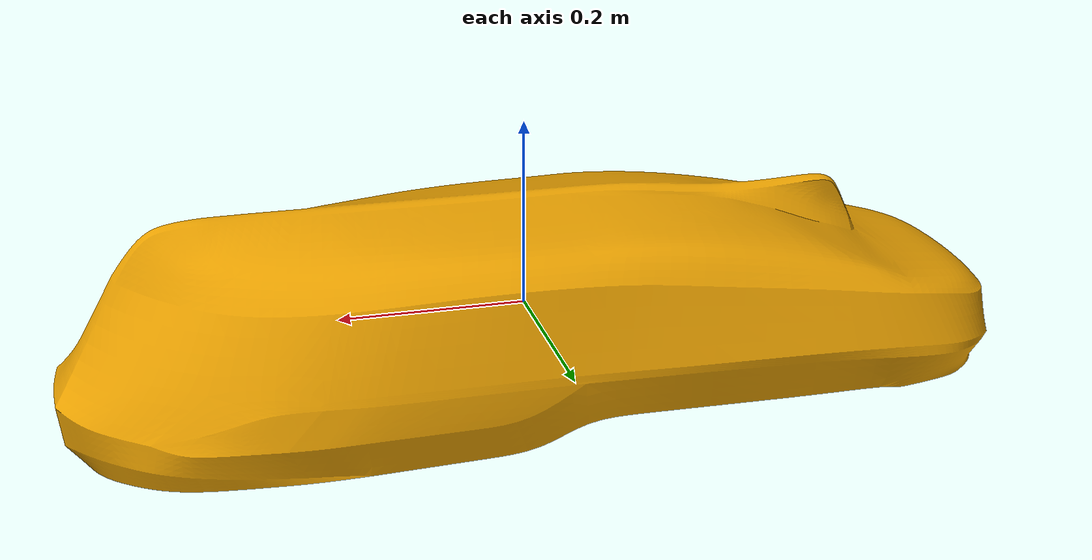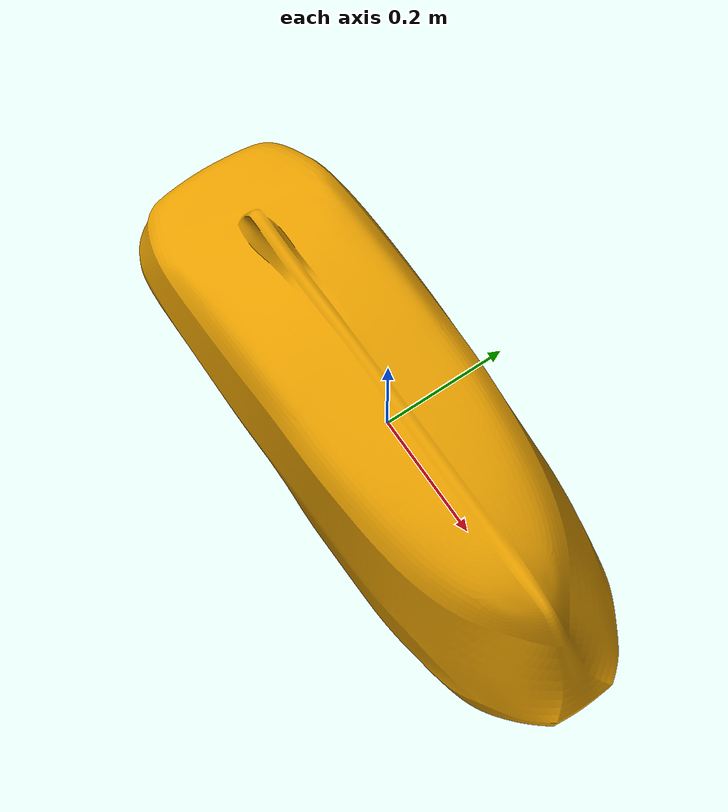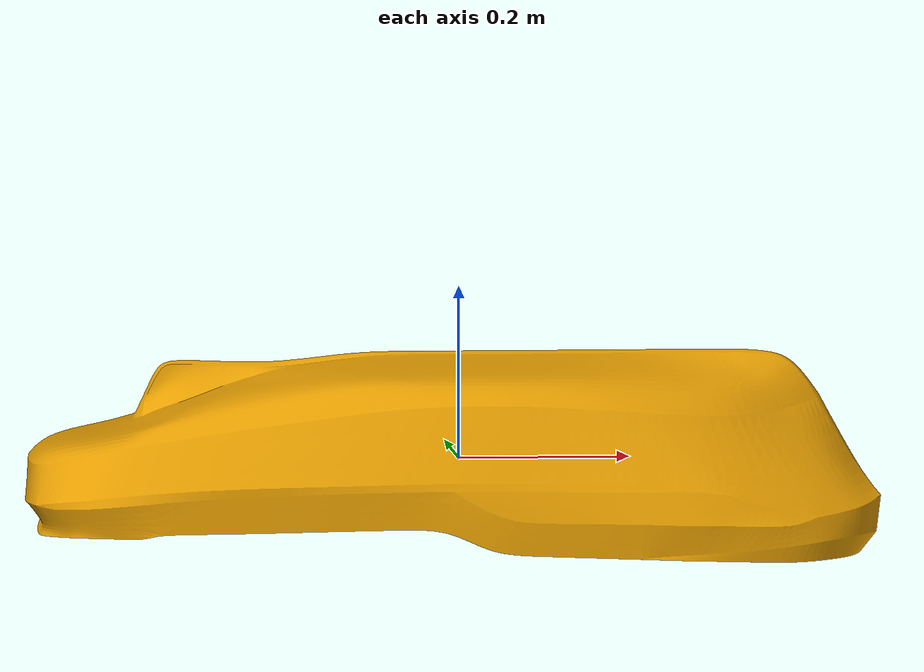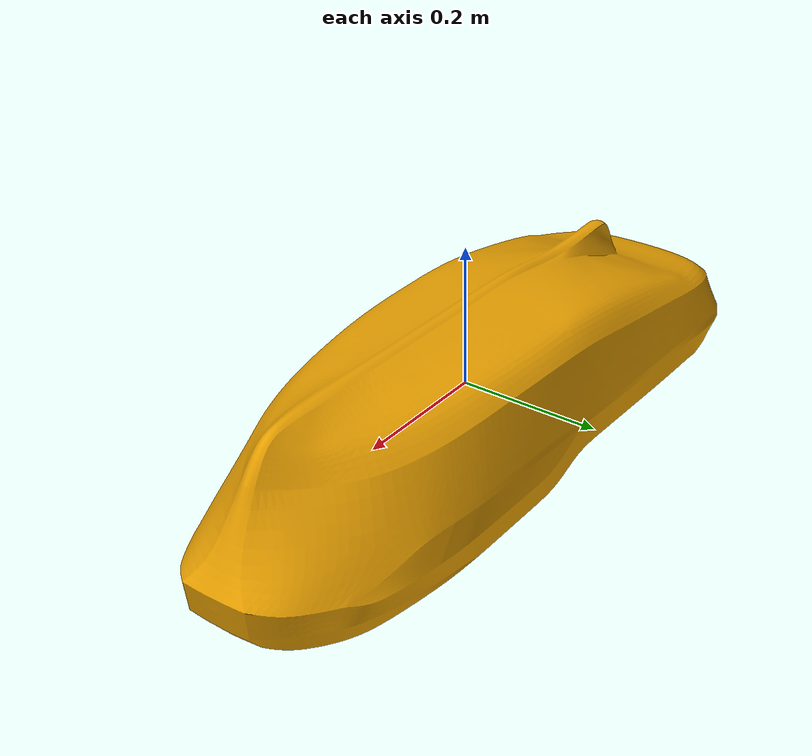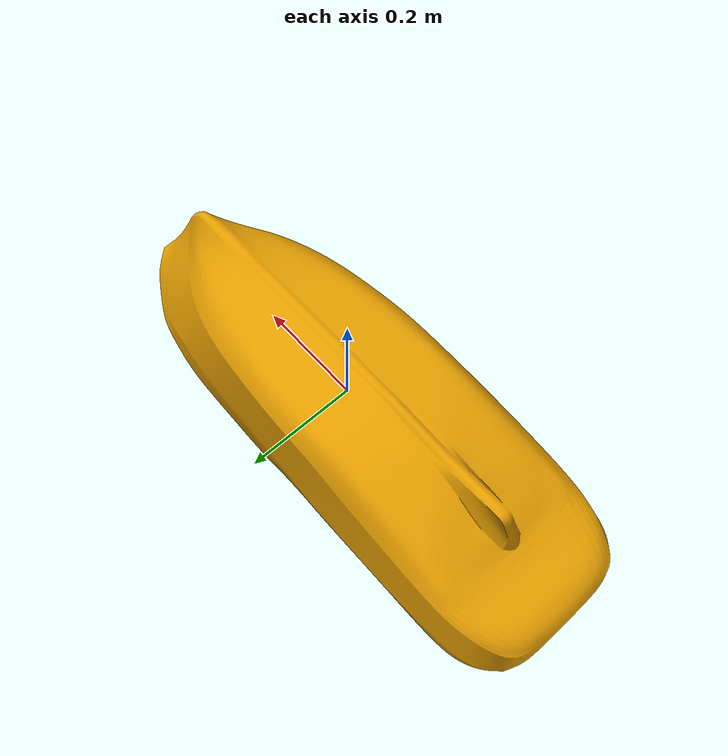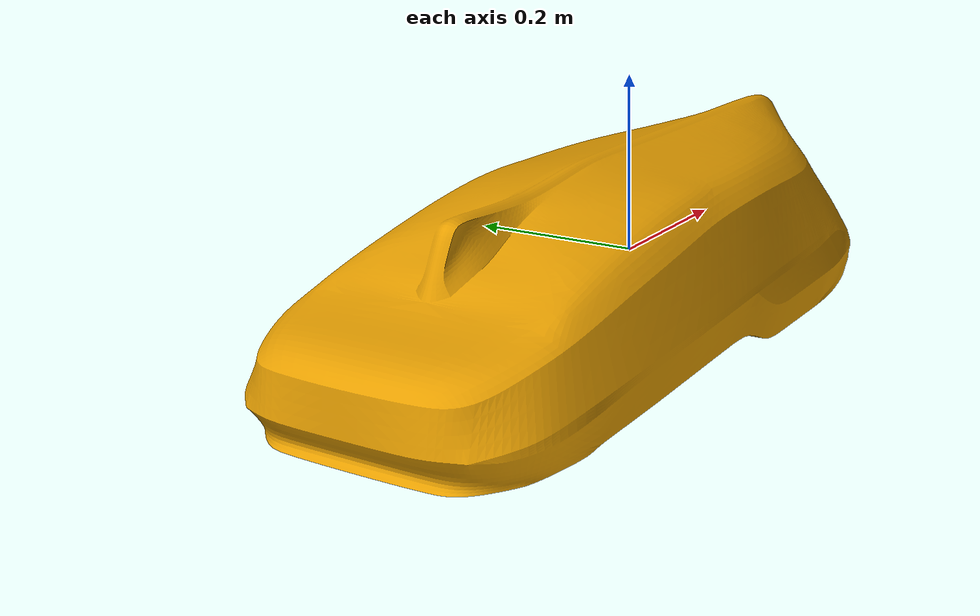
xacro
<?xml version="1.0"?>
<robot xmlns:xacro="http://www.ros.org/wiki/xacro" name="cybership_voyager">

    <link name="base_link">
        <visual>
            <origin
                xyz="0.0 0.0 0.0"
                rpy="0.0 0.0 3.141592653589793"
            />
            <geometry>
                <mesh
                    filename="package://cybership_description/meshes/voyager/model.stl"
                    scale="1.0 1.0 1.0"
                />

            </geometry>
        </visual>
    </link>

    <link name="base_link_ned"/>
    <joint name="base_link_to_ned" type="fixed">
        <child link="base_link"/>
        <parent link="base_link_ned"/>
        <origin xyz="0 0 0" rpy="-3.1415926 0 0.0"/>
    </joint>

    <link name="mocap_link"></link>
    <joint name="mocap_link_joint" type="fixed">
        <parent link="base_link_ned" />
        <child link="mocap_link" />
        <origin xyz="0.0 0.0 0.3" rpy="0.0 3.14159265358979 1.5707963267948966" />
    </joint>

    <link name="imu_link"></link>
    <joint name="imu_joint" type="fixed">
        <parent link="base_link_ned" />
        <child link="imu_link" />
        <origin xyz="-0.1 0 0.1" rpy="0.0 0.0 0.0" />
    </joint>

    <xacro:macro name="thruster" params="thruster_name origin_xyz origin_rpy">
        <link name="${thruster_name}_link" />
        <joint name="${thruster_name}_joint" type="fixed">
            <parent link="base_link_ned" />
            <child link="${thruster_name}_link" />
            <origin xyz="${origin_xyz}" rpy="${origin_rpy}" />
        </joint>
    </xacro:macro>

    <xacro:thruster
        thruster_name="stern_port_thruster"
        origin_xyz="-0.4574 -0.055 0.1"
        origin_rpy="0 0 0"
    />

    <xacro:thruster
        thruster_name="stern_starboard_thruster"
        origin_xyz="-0.4574 0.055 0.1"
        origin_rpy="0 0 0"
    />

    <xacro:thruster
        thruster_name="bow_tunnel_thruster"
        origin_xyz="0.3875 0 0.05"
        origin_rpy="0 0 -1.5707963267948966"
    />
</robot>
